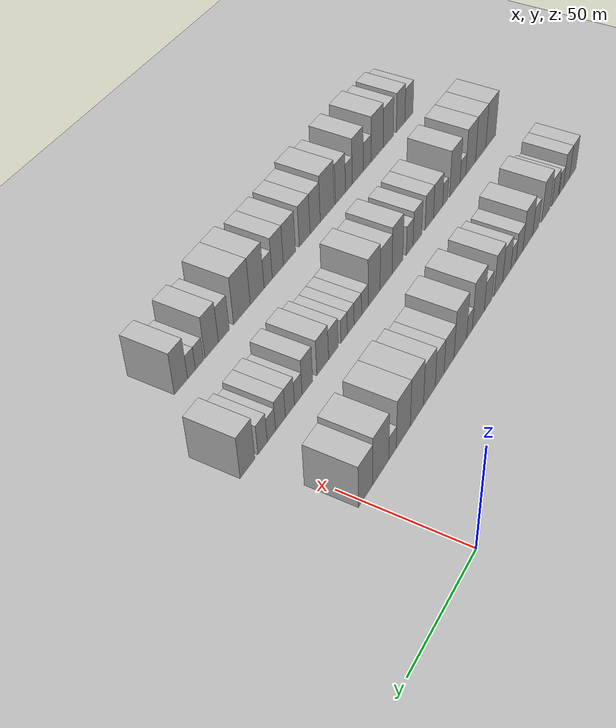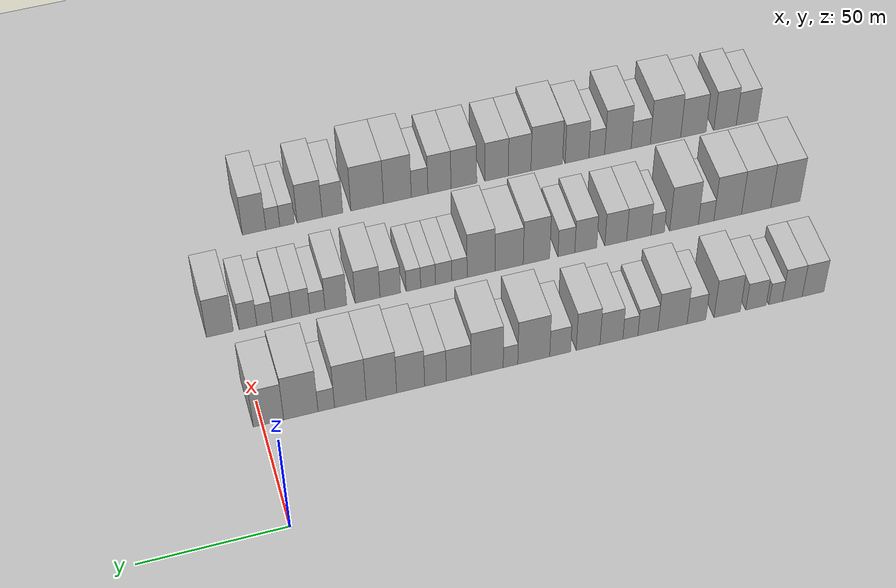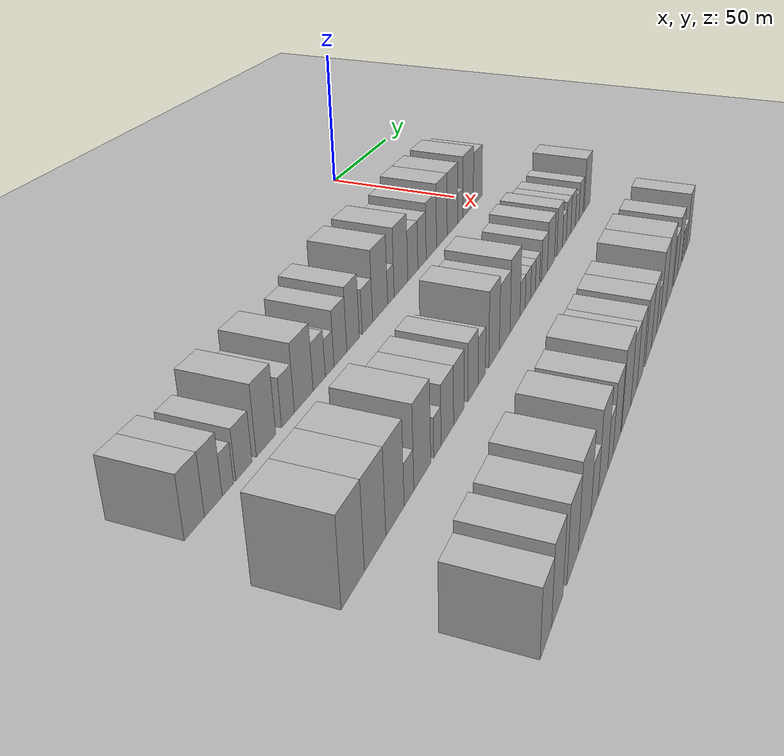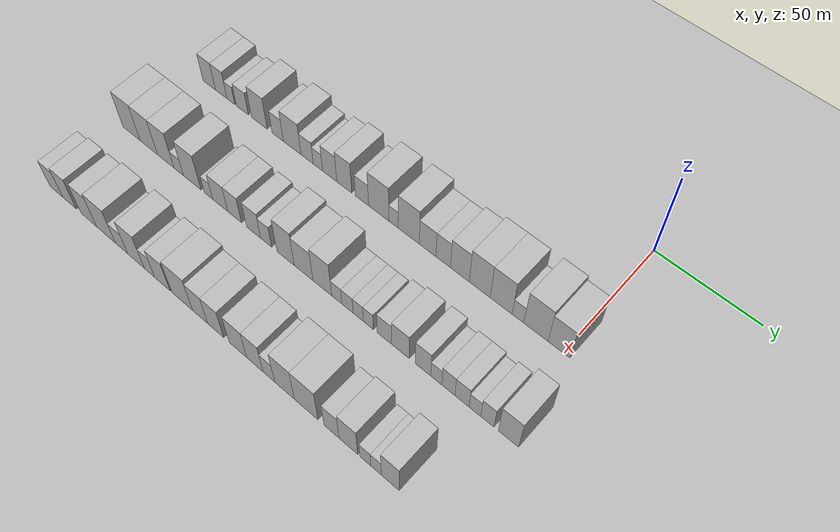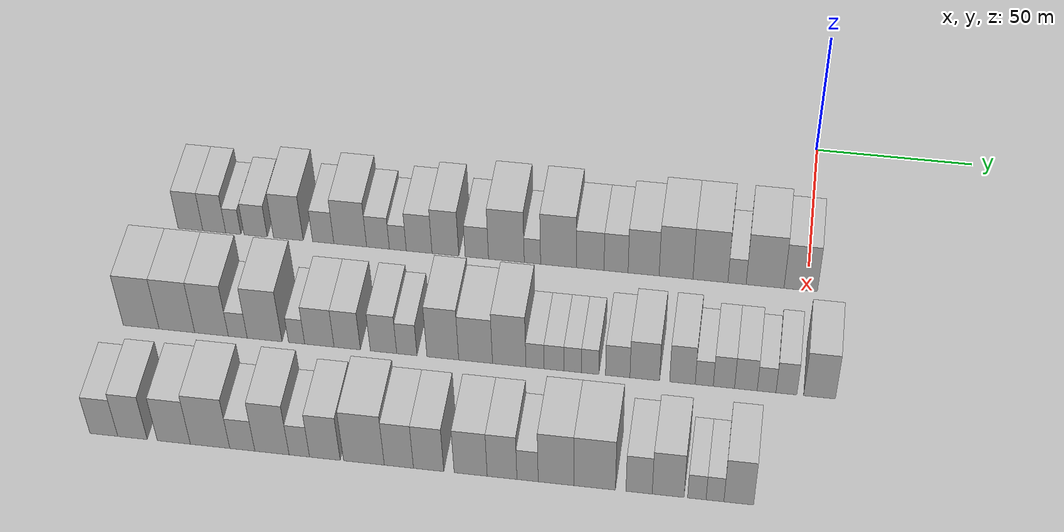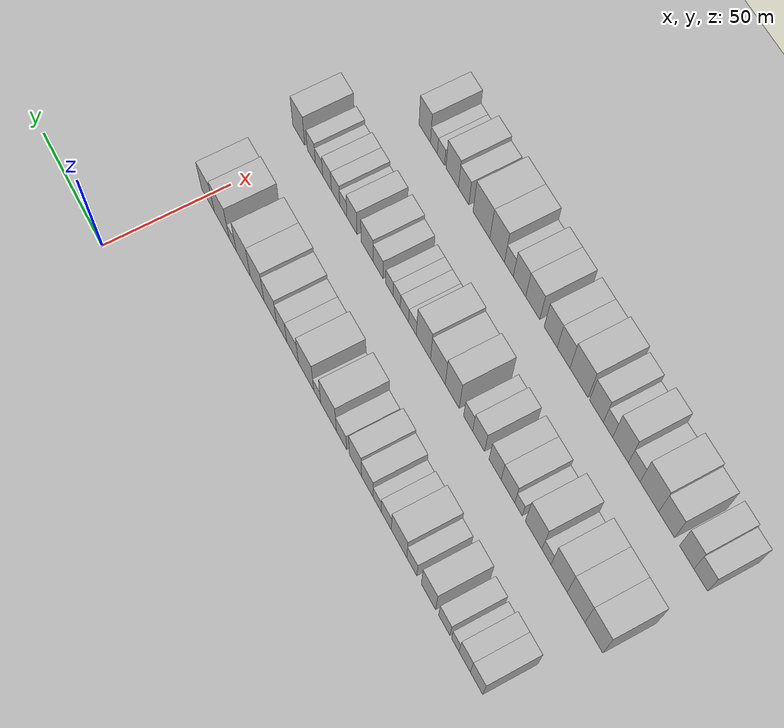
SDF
<sdf version="1.6">
 <world name="default">
  <include><name>ground_plane_1</name><uri>model://HANNAS_ground_plane</uri></include>
  <include>
   <name>ground_plane_2</name>
   <uri>model://HANNAS_ground_plane</uri>
   <pose>100 0 0  0 0 0</pose>
  </include>
  <model name="building_49">
   <static>1</static>
   <pose>50.0000 -193.6138 0 0.000000 0.000000 0.000000</pose>
   <link name="link">
    <pose>0 0 9.00 0 0 0</pose>
    <collision name="collision"><geometry><box><size>20.0000 7.9500 18.0000</size></box></geometry></collision>
    <visual name="visual">
     <cast_shadows>0</cast_shadows>
     <geometry><box><size>20.0000 7.9500 18.0000</size></box></geometry>
     <material>
      <script>
       <uri>model://HANNAS_wall/materials/scripts</uri>
       <uri>model://HANNAS_wall/materials/textures</uri>
       <name>vrc/HANNAS_wall</name>
      </script>
     </material>
    </visual>
   </link>
  </model>
  <model name="building_50">
   <static>1</static>
   <pose>50.0000 -185.9637 0 0.000000 0.000000 0.000000</pose>
   <link name="link">
    <pose>0 0 9.00 0 0 0</pose>
    <collision name="collision"><geometry><box><size>20.0000 7.3501 18.0000</size></box></geometry></collision>
    <visual name="visual">
     <cast_shadows>0</cast_shadows>
     <geometry><box><size>20.0000 7.3501 18.0000</size></box></geometry>
     <material>
      <script>
       <uri>model://HANNAS_wall/materials/scripts</uri>
       <uri>model://HANNAS_wall/materials/textures</uri>
       <name>vrc/HANNAS_wall</name>
      </script>
     </material>
    </visual>
   </link>
  </model>
  <model name="building_51">
   <static>1</static>
   <pose>50.0000 -179.8526 0 0.000000 0.000000 0.000000</pose>
   <link name="link">
    <pose>0 0 6.00 0 0 0</pose>
    <collision name="collision"><geometry><box><size>20.0000 4.8722 12.0000</size></box></geometry></collision>
    <visual name="visual">
     <cast_shadows>0</cast_shadows>
     <geometry><box><size>20.0000 4.8722 12.0000</size></box></geometry>
     <material>
      <script>
       <uri>model://HANNAS_wall/materials/scripts</uri>
       <uri>model://HANNAS_wall/materials/textures</uri>
       <name>vrc/HANNAS_wall</name>
      </script>
     </material>
    </visual>
   </link>
  </model>
  <model name="building_52">
   <static>1</static>
   <pose>50.0000 -172.6999 0 0.000000 0.000000 0.000000</pose>
   <link name="link">
    <pose>0 0 7.50 0 0 0</pose>
    <collision name="collision"><geometry><box><size>20.0000 7.4332 15.0000</size></box></geometry></collision>
    <visual name="visual">
     <cast_shadows>0</cast_shadows>
     <geometry><box><size>20.0000 7.4332 15.0000</size></box></geometry>
     <material>
      <script>
       <uri>model://HANNAS_wall/materials/scripts</uri>
       <uri>model://HANNAS_wall/materials/textures</uri>
       <name>vrc/HANNAS_wall</name>
      </script>
     </material>
    </visual>
   </link>
  </model>
  <model name="building_53">
   <static>1</static>
   <pose>50.0000 -162.2387 0 0.000000 0.000000 0.000000</pose>
   <link name="link">
    <pose>0 0 10.50 0 0 0</pose>
    <collision name="collision"><geometry><box><size>20.0000 9.4893 21.0000</size></box></geometry></collision>
    <visual name="visual">
     <cast_shadows>0</cast_shadows>
     <geometry><box><size>20.0000 9.4893 21.0000</size></box></geometry>
     <material>
      <script>
       <uri>model://HANNAS_wall/materials/scripts</uri>
       <uri>model://HANNAS_wall/materials/textures</uri>
       <name>vrc/HANNAS_wall</name>
      </script>
     </material>
    </visual>
   </link>
  </model>
  <model name="building_54">
   <static>1</static>
   <pose>50.0000 -151.1109 0 0.000000 0.000000 0.000000</pose>
   <link name="link">
    <pose>0 0 7.50 0 0 0</pose>
    <collision name="collision"><geometry><box><size>20.0000 6.7663 15.0000</size></box></geometry></collision>
    <visual name="visual">
     <cast_shadows>0</cast_shadows>
     <geometry><box><size>20.0000 6.7663 15.0000</size></box></geometry>
     <material>
      <script>
       <uri>model://HANNAS_wall/materials/scripts</uri>
       <uri>model://HANNAS_wall/materials/textures</uri>
       <name>vrc/HANNAS_wall</name>
      </script>
     </material>
    </visual>
   </link>
  </model>
  <model name="building_55">
   <static>1</static>
   <pose>50.0000 -142.5127 0 0.000000 0.000000 0.000000</pose>
   <link name="link">
    <pose>0 0 10.50 0 0 0</pose>
    <collision name="collision"><geometry><box><size>20.0000 10.4299 21.0000</size></box></geometry></collision>
    <visual name="visual">
     <cast_shadows>0</cast_shadows>
     <geometry><box><size>20.0000 10.4299 21.0000</size></box></geometry>
     <material>
      <script>
       <uri>model://HANNAS_wall/materials/scripts</uri>
       <uri>model://HANNAS_wall/materials/textures</uri>
       <name>vrc/HANNAS_wall</name>
      </script>
     </material>
    </visual>
   </link>
  </model>
  <model name="building_56">
   <static>1</static>
   <pose>50.0000 -133.7003 0 0.000000 0.000000 0.000000</pose>
   <link name="link">
    <pose>0 0 7.50 0 0 0</pose>
    <collision name="collision"><geometry><box><size>20.0000 7.1949 15.0000</size></box></geometry></collision>
    <visual name="visual">
     <cast_shadows>0</cast_shadows>
     <geometry><box><size>20.0000 7.1949 15.0000</size></box></geometry>
     <material>
      <script>
       <uri>model://HANNAS_wall/materials/scripts</uri>
       <uri>model://HANNAS_wall/materials/textures</uri>
       <name>vrc/HANNAS_wall</name>
      </script>
     </material>
    </visual>
   </link>
  </model>
  <model name="building_57">
   <static>1</static>
   <pose>50.0000 -127.4242 0 0.000000 0.000000 0.000000</pose>
   <link name="link">
    <pose>0 0 6.00 0 0 0</pose>
    <collision name="collision"><geometry><box><size>20.0000 5.3573 12.0000</size></box></geometry></collision>
    <visual name="visual">
     <cast_shadows>0</cast_shadows>
     <geometry><box><size>20.0000 5.3573 12.0000</size></box></geometry>
     <material>
      <script>
       <uri>model://HANNAS_wall/materials/scripts</uri>
       <uri>model://HANNAS_wall/materials/textures</uri>
       <name>vrc/HANNAS_wall</name>
      </script>
     </material>
    </visual>
   </link>
  </model>
  <model name="building_58">
   <static>1</static>
   <pose>50.0000 -120.6747 0 0.000000 0.000000 0.000000</pose>
   <link name="link">
    <pose>0 0 9.00 0 0 0</pose>
    <collision name="collision"><geometry><box><size>20.0000 8.1415 18.0000</size></box></geometry></collision>
    <visual name="visual">
     <cast_shadows>0</cast_shadows>
     <geometry><box><size>20.0000 8.1415 18.0000</size></box></geometry>
     <material>
      <script>
       <uri>model://HANNAS_wall/materials/scripts</uri>
       <uri>model://HANNAS_wall/materials/textures</uri>
       <name>vrc/HANNAS_wall</name>
      </script>
     </material>
    </visual>
   </link>
  </model>
  <model name="building_59">
   <static>1</static>
   <pose>50.0000 -112.3836 0 0.000000 0.000000 0.000000</pose>
   <link name="link">
    <pose>0 0 10.50 0 0 0</pose>
    <collision name="collision"><geometry><box><size>20.0000 8.4407 21.0000</size></box></geometry></collision>
    <visual name="visual">
     <cast_shadows>0</cast_shadows>
     <geometry><box><size>20.0000 8.4407 21.0000</size></box></geometry>
     <material>
      <script>
       <uri>model://HANNAS_wall/materials/scripts</uri>
       <uri>model://HANNAS_wall/materials/textures</uri>
       <name>vrc/HANNAS_wall</name>
      </script>
     </material>
    </visual>
   </link>
  </model>
  <model name="building_60">
   <static>1</static>
   <pose>50.0000 -102.4915 0 0.000000 0.000000 0.000000</pose>
   <link name="link">
    <pose>0 0 7.50 0 0 0</pose>
    <collision name="collision"><geometry><box><size>20.0000 7.3436 15.0000</size></box></geometry></collision>
    <visual name="visual">
     <cast_shadows>0</cast_shadows>
     <geometry><box><size>20.0000 7.3436 15.0000</size></box></geometry>
     <material>
      <script>
       <uri>model://HANNAS_wall/materials/scripts</uri>
       <uri>model://HANNAS_wall/materials/textures</uri>
       <name>vrc/HANNAS_wall</name>
      </script>
     </material>
    </visual>
   </link>
  </model>
  <model name="building_61">
   <static>1</static>
   <pose>50.0000 -93.2110 0 0.000000 0.000000 0.000000</pose>
   <link name="link">
    <pose>0 0 12.00 0 0 0</pose>
    <collision name="collision"><geometry><box><size>20.0000 11.2173 24.0000</size></box></geometry></collision>
    <visual name="visual">
     <cast_shadows>0</cast_shadows>
     <geometry><box><size>20.0000 11.2173 24.0000</size></box></geometry>
     <material>
      <script>
       <uri>model://HANNAS_wall/materials/scripts</uri>
       <uri>model://HANNAS_wall/materials/textures</uri>
       <name>vrc/HANNAS_wall</name>
      </script>
     </material>
    </visual>
   </link>
  </model>
  <model name="building_62">
   <static>1</static>
   <pose>50.0000 -85.0519 0 0.000000 0.000000 0.000000</pose>
   <link name="link">
    <pose>0 0 6.00 0 0 0</pose>
    <collision name="collision"><geometry><box><size>20.0000 5.1009 12.0000</size></box></geometry></collision>
    <visual name="visual">
     <cast_shadows>0</cast_shadows>
     <geometry><box><size>20.0000 5.1009 12.0000</size></box></geometry>
     <material>
      <script>
       <uri>model://HANNAS_wall/materials/scripts</uri>
       <uri>model://HANNAS_wall/materials/textures</uri>
       <name>vrc/HANNAS_wall</name>
      </script>
     </material>
    </visual>
   </link>
  </model>
  <model name="building_63">
   <static>1</static>
   <pose>50.0000 -76.9320 0 0.000000 0.000000 0.000000</pose>
   <link name="link">
    <pose>0 0 12.00 0 0 0</pose>
    <collision name="collision"><geometry><box><size>20.0000 11.1389 24.0000</size></box></geometry></collision>
    <visual name="visual">
     <cast_shadows>0</cast_shadows>
     <geometry><box><size>20.0000 11.1389 24.0000</size></box></geometry>
     <material>
      <script>
       <uri>model://HANNAS_wall/materials/scripts</uri>
       <uri>model://HANNAS_wall/materials/textures</uri>
       <name>vrc/HANNAS_wall</name>
      </script>
     </material>
    </visual>
   </link>
  </model>
  <model name="building_64">
   <static>1</static>
   <pose>50.0000 -67.0298 0 0.000000 0.000000 0.000000</pose>
   <link name="link">
    <pose>0 0 9.00 0 0 0</pose>
    <collision name="collision"><geometry><box><size>20.0000 8.6655 18.0000</size></box></geometry></collision>
    <visual name="visual">
     <cast_shadows>0</cast_shadows>
     <geometry><box><size>20.0000 8.6655 18.0000</size></box></geometry>
     <material>
      <script>
       <uri>model://HANNAS_wall/materials/scripts</uri>
       <uri>model://HANNAS_wall/materials/textures</uri>
       <name>vrc/HANNAS_wall</name>
      </script>
     </material>
    </visual>
   </link>
  </model>
  <model name="building_65">
   <static>1</static>
   <pose>50.0000 -58.9646 0 0.000000 0.000000 0.000000</pose>
   <link name="link">
    <pose>0 0 9.00 0 0 0</pose>
    <collision name="collision"><geometry><box><size>20.0000 7.4649 18.0000</size></box></geometry></collision>
    <visual name="visual">
     <cast_shadows>0</cast_shadows>
     <geometry><box><size>20.0000 7.4649 18.0000</size></box></geometry>
     <material>
      <script>
       <uri>model://HANNAS_wall/materials/scripts</uri>
       <uri>model://HANNAS_wall/materials/textures</uri>
       <name>vrc/HANNAS_wall</name>
      </script>
     </material>
    </visual>
   </link>
  </model>
  <model name="building_66">
   <static>1</static>
   <pose>50.0000 -50.4153 0 0.000000 0.000000 0.000000</pose>
   <link name="link">
    <pose>0 0 10.50 0 0 0</pose>
    <collision name="collision"><geometry><box><size>20.0000 9.6337 21.0000</size></box></geometry></collision>
    <visual name="visual">
     <cast_shadows>0</cast_shadows>
     <geometry><box><size>20.0000 9.6337 21.0000</size></box></geometry>
     <material>
      <script>
       <uri>model://HANNAS_wall/materials/scripts</uri>
       <uri>model://HANNAS_wall/materials/textures</uri>
       <name>vrc/HANNAS_wall</name>
      </script>
     </material>
    </visual>
   </link>
  </model>
  <model name="building_67">
   <static>1</static>
   <pose>50.0000 -40.3622 0 0.000000 0.000000 0.000000</pose>
   <link name="link">
    <pose>0 0 12.00 0 0 0</pose>
    <collision name="collision"><geometry><box><size>20.0000 10.4725 24.0000</size></box></geometry></collision>
    <visual name="visual">
     <cast_shadows>0</cast_shadows>
     <geometry><box><size>20.0000 10.4725 24.0000</size></box></geometry>
     <material>
      <script>
       <uri>model://HANNAS_wall/materials/scripts</uri>
       <uri>model://HANNAS_wall/materials/textures</uri>
       <name>vrc/HANNAS_wall</name>
      </script>
     </material>
    </visual>
   </link>
  </model>
  <model name="building_68">
   <static>1</static>
   <pose>50.0000 -29.7375 0 0.000000 0.000000 0.000000</pose>
   <link name="link">
    <pose>0 0 12.00 0 0 0</pose>
    <collision name="collision"><geometry><box><size>20.0000 10.7768 24.0000</size></box></geometry></collision>
    <visual name="visual">
     <cast_shadows>0</cast_shadows>
     <geometry><box><size>20.0000 10.7768 24.0000</size></box></geometry>
     <material>
      <script>
       <uri>model://HANNAS_wall/materials/scripts</uri>
       <uri>model://HANNAS_wall/materials/textures</uri>
       <name>vrc/HANNAS_wall</name>
      </script>
     </material>
    </visual>
   </link>
  </model>
  <model name="building_69">
   <static>1</static>
   <pose>50.0000 -21.5376 0 0.000000 0.000000 0.000000</pose>
   <link name="link">
    <pose>0 0 6.00 0 0 0</pose>
    <collision name="collision"><geometry><box><size>20.0000 5.6230 12.0000</size></box></geometry></collision>
    <visual name="visual">
     <cast_shadows>0</cast_shadows>
     <geometry><box><size>20.0000 5.6230 12.0000</size></box></geometry>
     <material>
      <script>
       <uri>model://HANNAS_wall/materials/scripts</uri>
       <uri>model://HANNAS_wall/materials/textures</uri>
       <name>vrc/HANNAS_wall</name>
      </script>
     </material>
    </visual>
   </link>
  </model>
  <model name="building_70">
   <static>1</static>
   <pose>50.0000 -12.9066 0 0.000000 0.000000 0.000000</pose>
   <link name="link">
    <pose>0 0 12.00 0 0 0</pose>
    <collision name="collision"><geometry><box><size>20.0000 11.6391 24.0000</size></box></geometry></collision>
    <visual name="visual">
     <cast_shadows>0</cast_shadows>
     <geometry><box><size>20.0000 11.6391 24.0000</size></box></geometry>
     <material>
      <script>
       <uri>model://HANNAS_wall/materials/scripts</uri>
       <uri>model://HANNAS_wall/materials/textures</uri>
       <name>vrc/HANNAS_wall</name>
      </script>
     </material>
    </visual>
   </link>
  </model>
  <model name="building_71">
   <static>1</static>
   <pose>50.0000 -1.9592 0 0.000000 0.000000 0.000000</pose>
   <link name="link">
    <pose>0 0 10.50 0 0 0</pose>
    <collision name="collision"><geometry><box><size>20.0000 10.2557 21.0000</size></box></geometry></collision>
    <visual name="visual">
     <cast_shadows>0</cast_shadows>
     <geometry><box><size>20.0000 10.2557 21.0000</size></box></geometry>
     <material>
      <script>
       <uri>model://HANNAS_wall/materials/scripts</uri>
       <uri>model://HANNAS_wall/materials/textures</uri>
       <name>vrc/HANNAS_wall</name>
      </script>
     </material>
    </visual>
   </link>
  </model>
  <model name="building_183">
   <static>1</static>
   <pose>90.0000 -198.7965 0 0.000000 0.000000 0.000000</pose>
   <link name="link">
    <pose>0 0 12.00 0 0 0</pose>
    <collision name="collision"><geometry><box><size>20.0000 11.0806 24.0000</size></box></geometry></collision>
    <visual name="visual">
     <cast_shadows>0</cast_shadows>
     <geometry><box><size>20.0000 11.0806 24.0000</size></box></geometry>
     <material>
      <script>
       <uri>model://HANNAS_wall/materials/scripts</uri>
       <uri>model://HANNAS_wall/materials/textures</uri>
       <name>vrc/HANNAS_wall</name>
      </script>
     </material>
    </visual>
   </link>
  </model>
  <model name="building_184">
   <static>1</static>
   <pose>90.0000 -187.7312 0 0.000000 0.000000 0.000000</pose>
   <link name="link">
    <pose>0 0 12.00 0 0 0</pose>
    <collision name="collision"><geometry><box><size>20.0000 11.0500 24.0000</size></box></geometry></collision>
    <visual name="visual">
     <cast_shadows>0</cast_shadows>
     <geometry><box><size>20.0000 11.0500 24.0000</size></box></geometry>
     <material>
      <script>
       <uri>model://HANNAS_wall/materials/scripts</uri>
       <uri>model://HANNAS_wall/materials/textures</uri>
       <name>vrc/HANNAS_wall</name>
      </script>
     </material>
    </visual>
   </link>
  </model>
  <model name="building_185">
   <static>1</static>
   <pose>90.0000 -177.0388 0 0.000000 0.000000 0.000000</pose>
   <link name="link">
    <pose>0 0 12.00 0 0 0</pose>
    <collision name="collision"><geometry><box><size>20.0000 10.3347 24.0000</size></box></geometry></collision>
    <visual name="visual">
     <cast_shadows>0</cast_shadows>
     <geometry><box><size>20.0000 10.3347 24.0000</size></box></geometry>
     <material>
      <script>
       <uri>model://HANNAS_wall/materials/scripts</uri>
       <uri>model://HANNAS_wall/materials/textures</uri>
       <name>vrc/HANNAS_wall</name>
      </script>
     </material>
    </visual>
   </link>
  </model>
  <model name="building_186">
   <static>1</static>
   <pose>90.0000 -168.9630 0 0.000000 0.000000 0.000000</pose>
   <link name="link">
    <pose>0 0 6.00 0 0 0</pose>
    <collision name="collision"><geometry><box><size>20.0000 5.8170 12.0000</size></box></geometry></collision>
    <visual name="visual">
     <cast_shadows>0</cast_shadows>
     <geometry><box><size>20.0000 5.8170 12.0000</size></box></geometry>
     <material>
      <script>
       <uri>model://HANNAS_wall/materials/scripts</uri>
       <uri>model://HANNAS_wall/materials/textures</uri>
       <name>vrc/HANNAS_wall</name>
      </script>
     </material>
    </visual>
   </link>
  </model>
  <model name="building_187">
   <static>1</static>
   <pose>90.0000 -160.7161 0 0.000000 0.000000 0.000000</pose>
   <link name="link">
    <pose>0 0 12.00 0 0 0</pose>
    <collision name="collision"><geometry><box><size>20.0000 10.6766 24.0000</size></box></geometry></collision>
    <visual name="visual">
     <cast_shadows>0</cast_shadows>
     <geometry><box><size>20.0000 10.6766 24.0000</size></box></geometry>
     <material>
      <script>
       <uri>model://HANNAS_wall/materials/scripts</uri>
       <uri>model://HANNAS_wall/materials/textures</uri>
       <name>vrc/HANNAS_wall</name>
      </script>
     </material>
    </visual>
   </link>
  </model>
  <model name="building_188">
   <static>1</static>
   <pose>90.0000 -150.8990 0 0.000000 0.000000 0.000000</pose>
   <link name="link">
    <pose>0 0 6.00 0 0 0</pose>
    <collision name="collision"><geometry><box><size>20.0000 4.9576 12.0000</size></box></geometry></collision>
    <visual name="visual">
     <cast_shadows>0</cast_shadows>
     <geometry><box><size>20.0000 4.9576 12.0000</size></box></geometry>
     <material>
      <script>
       <uri>model://HANNAS_wall/materials/scripts</uri>
       <uri>model://HANNAS_wall/materials/textures</uri>
       <name>vrc/HANNAS_wall</name>
      </script>
     </material>
    </visual>
   </link>
  </model>
  <model name="building_189">
   <static>1</static>
   <pose>90.0000 -143.9387 0 0.000000 0.000000 0.000000</pose>
   <link name="link">
    <pose>0 0 9.00 0 0 0</pose>
    <collision name="collision"><geometry><box><size>20.0000 8.9630 18.0000</size></box></geometry></collision>
    <visual name="visual">
     <cast_shadows>0</cast_shadows>
     <geometry><box><size>20.0000 8.9630 18.0000</size></box></geometry>
     <material>
      <script>
       <uri>model://HANNAS_wall/materials/scripts</uri>
       <uri>model://HANNAS_wall/materials/textures</uri>
       <name>vrc/HANNAS_wall</name>
      </script>
     </material>
    </visual>
   </link>
  </model>
  <model name="building_190">
   <static>1</static>
   <pose>90.0000 -135.4319 0 0.000000 0.000000 0.000000</pose>
   <link name="link">
    <pose>0 0 9.00 0 0 0</pose>
    <collision name="collision"><geometry><box><size>20.0000 8.0506 18.0000</size></box></geometry></collision>
    <visual name="visual">
     <cast_shadows>0</cast_shadows>
     <geometry><box><size>20.0000 8.0506 18.0000</size></box></geometry>
     <material>
      <script>
       <uri>model://HANNAS_wall/materials/scripts</uri>
       <uri>model://HANNAS_wall/materials/textures</uri>
       <name>vrc/HANNAS_wall</name>
      </script>
     </material>
    </visual>
   </link>
  </model>
  <model name="building_191">
   <static>1</static>
   <pose>90.0000 -124.3898 0 0.000000 0.000000 0.000000</pose>
   <link name="link">
    <pose>0 0 9.00 0 0 0</pose>
    <collision name="collision"><geometry><box><size>20.0000 8.0337 18.0000</size></box></geometry></collision>
    <visual name="visual">
     <cast_shadows>0</cast_shadows>
     <geometry><box><size>20.0000 8.0337 18.0000</size></box></geometry>
     <material>
      <script>
       <uri>model://HANNAS_wall/materials/scripts</uri>
       <uri>model://HANNAS_wall/materials/textures</uri>
       <name>vrc/HANNAS_wall</name>
      </script>
     </material>
    </visual>
   </link>
  </model>
  <model name="building_192">
   <static>1</static>
   <pose>90.0000 -117.2927 0 0.000000 0.000000 0.000000</pose>
   <link name="link">
    <pose>0 0 7.50 0 0 0</pose>
    <collision name="collision"><geometry><box><size>20.0000 6.1603 15.0000</size></box></geometry></collision>
    <visual name="visual">
     <cast_shadows>0</cast_shadows>
     <geometry><box><size>20.0000 6.1603 15.0000</size></box></geometry>
     <material>
      <script>
       <uri>model://HANNAS_wall/materials/scripts</uri>
       <uri>model://HANNAS_wall/materials/textures</uri>
       <name>vrc/HANNAS_wall</name>
      </script>
     </material>
    </visual>
   </link>
  </model>
  <model name="building_193">
   <static>1</static>
   <pose>90.0000 -106.4087 0 0.000000 0.000000 0.000000</pose>
   <link name="link">
    <pose>0 0 12.00 0 0 0</pose>
    <collision name="collision"><geometry><box><size>20.0000 9.6076 24.0000</size></box></geometry></collision>
    <visual name="visual">
     <cast_shadows>0</cast_shadows>
     <geometry><box><size>20.0000 9.6076 24.0000</size></box></geometry>
     <material>
      <script>
       <uri>model://HANNAS_wall/materials/scripts</uri>
       <uri>model://HANNAS_wall/materials/textures</uri>
       <name>vrc/HANNAS_wall</name>
      </script>
     </material>
    </visual>
   </link>
  </model>
  <model name="building_194">
   <static>1</static>
   <pose>90.0000 -96.5031 0 0.000000 0.000000 0.000000</pose>
   <link name="link">
    <pose>0 0 10.50 0 0 0</pose>
    <collision name="collision"><geometry><box><size>20.0000 10.2036 21.0000</size></box></geometry></collision>
    <visual name="visual">
     <cast_shadows>0</cast_shadows>
     <geometry><box><size>20.0000 10.2036 21.0000</size></box></geometry>
     <material>
      <script>
       <uri>model://HANNAS_wall/materials/scripts</uri>
       <uri>model://HANNAS_wall/materials/textures</uri>
       <name>vrc/HANNAS_wall</name>
      </script>
     </material>
    </visual>
   </link>
  </model>
  <model name="building_195">
   <static>1</static>
   <pose>90.0000 -86.3754 0 0.000000 0.000000 0.000000</pose>
   <link name="link">
    <pose>0 0 12.00 0 0 0</pose>
    <collision name="collision"><geometry><box><size>20.0000 10.0518 24.0000</size></box></geometry></collision>
    <visual name="visual">
     <cast_shadows>0</cast_shadows>
     <geometry><box><size>20.0000 10.0518 24.0000</size></box></geometry>
     <material>
      <script>
       <uri>model://HANNAS_wall/materials/scripts</uri>
       <uri>model://HANNAS_wall/materials/textures</uri>
       <name>vrc/HANNAS_wall</name>
      </script>
     </material>
    </visual>
   </link>
  </model>
  <model name="building_196">
   <static>1</static>
   <pose>90.0000 -78.6132 0 0.000000 0.000000 0.000000</pose>
   <link name="link">
    <pose>0 0 6.00 0 0 0</pose>
    <collision name="collision"><geometry><box><size>20.0000 5.4726 12.0000</size></box></geometry></collision>
    <visual name="visual">
     <cast_shadows>0</cast_shadows>
     <geometry><box><size>20.0000 5.4726 12.0000</size></box></geometry>
     <material>
      <script>
       <uri>model://HANNAS_wall/materials/scripts</uri>
       <uri>model://HANNAS_wall/materials/textures</uri>
       <name>vrc/HANNAS_wall</name>
      </script>
     </material>
    </visual>
   </link>
  </model>
  <model name="building_197">
   <static>1</static>
   <pose>90.0000 -72.9280 0 0.000000 0.000000 0.000000</pose>
   <link name="link">
    <pose>0 0 6.00 0 0 0</pose>
    <collision name="collision"><geometry><box><size>20.0000 5.8979 12.0000</size></box></geometry></collision>
    <visual name="visual">
     <cast_shadows>0</cast_shadows>
     <geometry><box><size>20.0000 5.8979 12.0000</size></box></geometry>
     <material>
      <script>
       <uri>model://HANNAS_wall/materials/scripts</uri>
       <uri>model://HANNAS_wall/materials/textures</uri>
       <name>vrc/HANNAS_wall</name>
      </script>
     </material>
    </visual>
   </link>
  </model>
  <model name="building_198">
   <static>1</static>
   <pose>90.0000 -67.3420 0 0.000000 0.000000 0.000000</pose>
   <link name="link">
    <pose>0 0 6.00 0 0 0</pose>
    <collision name="collision"><geometry><box><size>20.0000 5.2740 12.0000</size></box></geometry></collision>
    <visual name="visual">
     <cast_shadows>0</cast_shadows>
     <geometry><box><size>20.0000 5.2740 12.0000</size></box></geometry>
     <material>
      <script>
       <uri>model://HANNAS_wall/materials/scripts</uri>
       <uri>model://HANNAS_wall/materials/textures</uri>
       <name>vrc/HANNAS_wall</name>
      </script>
     </material>
    </visual>
   </link>
  </model>
  <model name="building_199">
   <static>1</static>
   <pose>90.0000 -62.1107 0 0.000000 0.000000 0.000000</pose>
   <link name="link">
    <pose>0 0 6.00 0 0 0</pose>
    <collision name="collision"><geometry><box><size>20.0000 5.1886 12.0000</size></box></geometry></collision>
    <visual name="visual">
     <cast_shadows>0</cast_shadows>
     <geometry><box><size>20.0000 5.1886 12.0000</size></box></geometry>
     <material>
      <script>
       <uri>model://HANNAS_wall/materials/scripts</uri>
       <uri>model://HANNAS_wall/materials/textures</uri>
       <name>vrc/HANNAS_wall</name>
      </script>
     </material>
    </visual>
   </link>
  </model>
  <model name="building_200">
   <static>1</static>
   <pose>90.0000 -53.8753 0 0.000000 0.000000 0.000000</pose>
   <link name="link">
    <pose>0 0 7.50 0 0 0</pose>
    <collision name="collision"><geometry><box><size>20.0000 7.2821 15.0000</size></box></geometry></collision>
    <visual name="visual">
     <cast_shadows>0</cast_shadows>
     <geometry><box><size>20.0000 7.2821 15.0000</size></box></geometry>
     <material>
      <script>
       <uri>model://HANNAS_wall/materials/scripts</uri>
       <uri>model://HANNAS_wall/materials/textures</uri>
       <name>vrc/HANNAS_wall</name>
      </script>
     </material>
    </visual>
   </link>
  </model>
  <model name="building_201">
   <static>1</static>
   <pose>90.0000 -45.8330 0 0.000000 0.000000 0.000000</pose>
   <link name="link">
    <pose>0 0 9.00 0 0 0</pose>
    <collision name="collision"><geometry><box><size>20.0000 8.8026 18.0000</size></box></geometry></collision>
    <visual name="visual">
     <cast_shadows>0</cast_shadows>
     <geometry><box><size>20.0000 8.8026 18.0000</size></box></geometry>
     <material>
      <script>
       <uri>model://HANNAS_wall/materials/scripts</uri>
       <uri>model://HANNAS_wall/materials/textures</uri>
       <name>vrc/HANNAS_wall</name>
      </script>
     </material>
    </visual>
   </link>
  </model>
  <model name="building_202">
   <static>1</static>
   <pose>90.0000 -34.6367 0 0.000000 0.000000 0.000000</pose>
   <link name="link">
    <pose>0 0 9.00 0 0 0</pose>
    <collision name="collision"><geometry><box><size>20.0000 7.5900 18.0000</size></box></geometry></collision>
    <visual name="visual">
     <cast_shadows>0</cast_shadows>
     <geometry><box><size>20.0000 7.5900 18.0000</size></box></geometry>
     <material>
      <script>
       <uri>model://HANNAS_wall/materials/scripts</uri>
       <uri>model://HANNAS_wall/materials/textures</uri>
       <name>vrc/HANNAS_wall</name>
      </script>
     </material>
    </visual>
   </link>
  </model>
  <model name="building_203">
   <static>1</static>
   <pose>90.0000 -28.1659 0 0.000000 0.000000 0.000000</pose>
   <link name="link">
    <pose>0 0 6.00 0 0 0</pose>
    <collision name="collision"><geometry><box><size>20.0000 5.3516 12.0000</size></box></geometry></collision>
    <visual name="visual">
     <cast_shadows>0</cast_shadows>
     <geometry><box><size>20.0000 5.3516 12.0000</size></box></geometry>
     <material>
      <script>
       <uri>model://HANNAS_wall/materials/scripts</uri>
       <uri>model://HANNAS_wall/materials/textures</uri>
       <name>vrc/HANNAS_wall</name>
      </script>
     </material>
    </visual>
   </link>
  </model>
  <model name="building_204">
   <static>1</static>
   <pose>90.0000 -22.3485 0 0.000000 0.000000 0.000000</pose>
   <link name="link">
    <pose>0 0 7.50 0 0 0</pose>
    <collision name="collision"><geometry><box><size>20.0000 6.2832 15.0000</size></box></geometry></collision>
    <visual name="visual">
     <cast_shadows>0</cast_shadows>
     <geometry><box><size>20.0000 6.2832 15.0000</size></box></geometry>
     <material>
      <script>
       <uri>model://HANNAS_wall/materials/scripts</uri>
       <uri>model://HANNAS_wall/materials/textures</uri>
       <name>vrc/HANNAS_wall</name>
      </script>
     </material>
    </visual>
   </link>
  </model>
  <model name="building_205">
   <static>1</static>
   <pose>90.0000 -15.8681 0 0.000000 0.000000 0.000000</pose>
   <link name="link">
    <pose>0 0 7.50 0 0 0</pose>
    <collision name="collision"><geometry><box><size>20.0000 6.6775 15.0000</size></box></geometry></collision>
    <visual name="visual">
     <cast_shadows>0</cast_shadows>
     <geometry><box><size>20.0000 6.6775 15.0000</size></box></geometry>
     <material>
      <script>
       <uri>model://HANNAS_wall/materials/scripts</uri>
       <uri>model://HANNAS_wall/materials/textures</uri>
       <name>vrc/HANNAS_wall</name>
      </script>
     </material>
    </visual>
   </link>
  </model>
  <model name="building_206">
   <static>1</static>
   <pose>90.0000 -9.7607 0 0.000000 0.000000 0.000000</pose>
   <link name="link">
    <pose>0 0 6.00 0 0 0</pose>
    <collision name="collision"><geometry><box><size>20.0000 5.5373 12.0000</size></box></geometry></collision>
    <visual name="visual">
     <cast_shadows>0</cast_shadows>
     <geometry><box><size>20.0000 5.5373 12.0000</size></box></geometry>
     <material>
      <script>
       <uri>model://HANNAS_wall/materials/scripts</uri>
       <uri>model://HANNAS_wall/materials/textures</uri>
       <name>vrc/HANNAS_wall</name>
      </script>
     </material>
    </visual>
   </link>
  </model>
  <model name="building_207">
   <static>1</static>
   <pose>90.0000 -3.9104 0 0.000000 0.000000 0.000000</pose>
   <link name="link">
    <pose>0 0 7.50 0 0 0</pose>
    <collision name="collision"><geometry><box><size>20.0000 6.1633 15.0000</size></box></geometry></collision>
    <visual name="visual">
     <cast_shadows>0</cast_shadows>
     <geometry><box><size>20.0000 6.1633 15.0000</size></box></geometry>
     <material>
      <script>
       <uri>model://HANNAS_wall/materials/scripts</uri>
       <uri>model://HANNAS_wall/materials/textures</uri>
       <name>vrc/HANNAS_wall</name>
      </script>
     </material>
    </visual>
   </link>
  </model>
  <model name="building_208">
   <static>1</static>
   <pose>90.0000 5.8386 0 0.000000 0.000000 0.000000</pose>
   <link name="link">
    <pose>0 0 10.50 0 0 0</pose>
    <collision name="collision"><geometry><box><size>20.0000 9.3346 21.0000</size></box></geometry></collision>
    <visual name="visual">
     <cast_shadows>0</cast_shadows>
     <geometry><box><size>20.0000 9.3346 21.0000</size></box></geometry>
     <material>
      <script>
       <uri>model://HANNAS_wall/materials/scripts</uri>
       <uri>model://HANNAS_wall/materials/textures</uri>
       <name>vrc/HANNAS_wall</name>
      </script>
     </material>
    </visual>
   </link>
  </model>
  <model name="building_321">
   <static>1</static>
   <pose>130.0000 -199.1531 0 0.000000 0.000000 0.000000</pose>
   <link name="link">
    <pose>0 0 9.00 0 0 0</pose>
    <collision name="collision"><geometry><box><size>20.0000 8.2815 18.0000</size></box></geometry></collision>
    <visual name="visual">
     <cast_shadows>0</cast_shadows>
     <geometry><box><size>20.0000 8.2815 18.0000</size></box></geometry>
     <material>
      <script>
       <uri>model://HANNAS_wall/materials/scripts</uri>
       <uri>model://HANNAS_wall/materials/textures</uri>
       <name>vrc/HANNAS_wall</name>
      </script>
     </material>
    </visual>
   </link>
  </model>
  <model name="building_322">
   <static>1</static>
   <pose>130.0000 -190.6394 0 0.000000 0.000000 0.000000</pose>
   <link name="link">
    <pose>0 0 10.50 0 0 0</pose>
    <collision name="collision"><geometry><box><size>20.0000 8.7459 21.0000</size></box></geometry></collision>
    <visual name="visual">
     <cast_shadows>0</cast_shadows>
     <geometry><box><size>20.0000 8.7459 21.0000</size></box></geometry>
     <material>
      <script>
       <uri>model://HANNAS_wall/materials/scripts</uri>
       <uri>model://HANNAS_wall/materials/textures</uri>
       <name>vrc/HANNAS_wall</name>
      </script>
     </material>
    </visual>
   </link>
  </model>
  <model name="building_323">
   <static>1</static>
   <pose>130.0000 -178.3749 0 0.000000 0.000000 0.000000</pose>
   <link name="link">
    <pose>0 0 10.50 0 0 0</pose>
    <collision name="collision"><geometry><box><size>20.0000 9.7831 21.0000</size></box></geometry></collision>
    <visual name="visual">
     <cast_shadows>0</cast_shadows>
     <geometry><box><size>20.0000 9.7831 21.0000</size></box></geometry>
     <material>
      <script>
       <uri>model://HANNAS_wall/materials/scripts</uri>
       <uri>model://HANNAS_wall/materials/textures</uri>
       <name>vrc/HANNAS_wall</name>
      </script>
     </material>
    </visual>
   </link>
  </model>
  <model name="building_324">
   <static>1</static>
   <pose>130.0000 -167.6653 0 0.000000 0.000000 0.000000</pose>
   <link name="link">
    <pose>0 0 12.00 0 0 0</pose>
    <collision name="collision"><geometry><box><size>20.0000 11.6360 24.0000</size></box></geometry></collision>
    <visual name="visual">
     <cast_shadows>0</cast_shadows>
     <geometry><box><size>20.0000 11.6360 24.0000</size></box></geometry>
     <material>
      <script>
       <uri>model://HANNAS_wall/materials/scripts</uri>
       <uri>model://HANNAS_wall/materials/textures</uri>
       <name>vrc/HANNAS_wall</name>
      </script>
     </material>
    </visual>
   </link>
  </model>
  <model name="building_325">
   <static>1</static>
   <pose>130.0000 -158.1570 0 0.000000 0.000000 0.000000</pose>
   <link name="link">
    <pose>0 0 7.50 0 0 0</pose>
    <collision name="collision"><geometry><box><size>20.0000 7.3804 15.0000</size></box></geometry></collision>
    <visual name="visual">
     <cast_shadows>0</cast_shadows>
     <geometry><box><size>20.0000 7.3804 15.0000</size></box></geometry>
     <material>
      <script>
       <uri>model://HANNAS_wall/materials/scripts</uri>
       <uri>model://HANNAS_wall/materials/textures</uri>
       <name>vrc/HANNAS_wall</name>
      </script>
     </material>
    </visual>
   </link>
  </model>
  <model name="building_326">
   <static>1</static>
   <pose>130.0000 -149.4421 0 0.000000 0.000000 0.000000</pose>
   <link name="link">
    <pose>0 0 12.00 0 0 0</pose>
    <collision name="collision"><geometry><box><size>20.0000 10.0494 24.0000</size></box></geometry></collision>
    <visual name="visual">
     <cast_shadows>0</cast_shadows>
     <geometry><box><size>20.0000 10.0494 24.0000</size></box></geometry>
     <material>
      <script>
       <uri>model://HANNAS_wall/materials/scripts</uri>
       <uri>model://HANNAS_wall/materials/textures</uri>
       <name>vrc/HANNAS_wall</name>
      </script>
     </material>
    </visual>
   </link>
  </model>
  <model name="building_327">
   <static>1</static>
   <pose>130.0000 -141.4119 0 0.000000 0.000000 0.000000</pose>
   <link name="link">
    <pose>0 0 7.50 0 0 0</pose>
    <collision name="collision"><geometry><box><size>20.0000 6.0112 15.0000</size></box></geometry></collision>
    <visual name="visual">
     <cast_shadows>0</cast_shadows>
     <geometry><box><size>20.0000 6.0112 15.0000</size></box></geometry>
     <material>
      <script>
       <uri>model://HANNAS_wall/materials/scripts</uri>
       <uri>model://HANNAS_wall/materials/textures</uri>
       <name>vrc/HANNAS_wall</name>
      </script>
     </material>
    </visual>
   </link>
  </model>
  <model name="building_328">
   <static>1</static>
   <pose>130.0000 -133.9271 0 0.000000 0.000000 0.000000</pose>
   <link name="link">
    <pose>0 0 10.50 0 0 0</pose>
    <collision name="collision"><geometry><box><size>20.0000 8.9584 21.0000</size></box></geometry></collision>
    <visual name="visual">
     <cast_shadows>0</cast_shadows>
     <geometry><box><size>20.0000 8.9584 21.0000</size></box></geometry>
     <material>
      <script>
       <uri>model://HANNAS_wall/materials/scripts</uri>
       <uri>model://HANNAS_wall/materials/textures</uri>
       <name>vrc/HANNAS_wall</name>
      </script>
     </material>
    </visual>
   </link>
  </model>
  <model name="building_329">
   <static>1</static>
   <pose>130.0000 -122.5182 0 0.000000 0.000000 0.000000</pose>
   <link name="link">
    <pose>0 0 12.00 0 0 0</pose>
    <collision name="collision"><geometry><box><size>20.0000 11.8593 24.0000</size></box></geometry></collision>
    <visual name="visual">
     <cast_shadows>0</cast_shadows>
     <geometry><box><size>20.0000 11.8593 24.0000</size></box></geometry>
     <material>
      <script>
       <uri>model://HANNAS_wall/materials/scripts</uri>
       <uri>model://HANNAS_wall/materials/textures</uri>
       <name>vrc/HANNAS_wall</name>
      </script>
     </material>
    </visual>
   </link>
  </model>
  <model name="building_330">
   <static>1</static>
   <pose>130.0000 -112.3462 0 0.000000 0.000000 0.000000</pose>
   <link name="link">
    <pose>0 0 10.50 0 0 0</pose>
    <collision name="collision"><geometry><box><size>20.0000 8.4847 21.0000</size></box></geometry></collision>
    <visual name="visual">
     <cast_shadows>0</cast_shadows>
     <geometry><box><size>20.0000 8.4847 21.0000</size></box></geometry>
     <material>
      <script>
       <uri>model://HANNAS_wall/materials/scripts</uri>
       <uri>model://HANNAS_wall/materials/textures</uri>
       <name>vrc/HANNAS_wall</name>
      </script>
     </material>
    </visual>
   </link>
  </model>
  <model name="building_331">
   <static>1</static>
   <pose>130.0000 -103.7130 0 0.000000 0.000000 0.000000</pose>
   <link name="link">
    <pose>0 0 10.50 0 0 0</pose>
    <collision name="collision"><geometry><box><size>20.0000 8.7819 21.0000</size></box></geometry></collision>
    <visual name="visual">
     <cast_shadows>0</cast_shadows>
     <geometry><box><size>20.0000 8.7819 21.0000</size></box></geometry>
     <material>
      <script>
       <uri>model://HANNAS_wall/materials/scripts</uri>
       <uri>model://HANNAS_wall/materials/textures</uri>
       <name>vrc/HANNAS_wall</name>
      </script>
     </material>
    </visual>
   </link>
  </model>
  <model name="building_332">
   <static>1</static>
   <pose>130.0000 -91.5479 0 0.000000 0.000000 0.000000</pose>
   <link name="link">
    <pose>0 0 10.50 0 0 0</pose>
    <collision name="collision"><geometry><box><size>20.0000 9.5482 21.0000</size></box></geometry></collision>
    <visual name="visual">
     <cast_shadows>0</cast_shadows>
     <geometry><box><size>20.0000 9.5482 21.0000</size></box></geometry>
     <material>
      <script>
       <uri>model://HANNAS_wall/materials/scripts</uri>
       <uri>model://HANNAS_wall/materials/textures</uri>
       <name>vrc/HANNAS_wall</name>
      </script>
     </material>
    </visual>
   </link>
  </model>
  <model name="building_333">
   <static>1</static>
   <pose>130.0000 -82.4915 0 0.000000 0.000000 0.000000</pose>
   <link name="link">
    <pose>0 0 10.50 0 0 0</pose>
    <collision name="collision"><geometry><box><size>20.0000 8.5646 21.0000</size></box></geometry></collision>
    <visual name="visual">
     <cast_shadows>0</cast_shadows>
     <geometry><box><size>20.0000 8.5646 21.0000</size></box></geometry>
     <material>
      <script>
       <uri>model://HANNAS_wall/materials/scripts</uri>
       <uri>model://HANNAS_wall/materials/textures</uri>
       <name>vrc/HANNAS_wall</name>
      </script>
     </material>
    </visual>
   </link>
  </model>
  <model name="building_334">
   <static>1</static>
   <pose>130.0000 -75.1531 0 0.000000 0.000000 0.000000</pose>
   <link name="link">
    <pose>0 0 7.50 0 0 0</pose>
    <collision name="collision"><geometry><box><size>20.0000 6.1120 15.0000</size></box></geometry></collision>
    <visual name="visual">
     <cast_shadows>0</cast_shadows>
     <geometry><box><size>20.0000 6.1120 15.0000</size></box></geometry>
     <material>
      <script>
       <uri>model://HANNAS_wall/materials/scripts</uri>
       <uri>model://HANNAS_wall/materials/textures</uri>
       <name>vrc/HANNAS_wall</name>
      </script>
     </material>
    </visual>
   </link>
  </model>
  <model name="building_335">
   <static>1</static>
   <pose>130.0000 -66.9962 0 0.000000 0.000000 0.000000</pose>
   <link name="link">
    <pose>0 0 12.00 0 0 0</pose>
    <collision name="collision"><geometry><box><size>20.0000 10.2019 24.0000</size></box></geometry></collision>
    <visual name="visual">
     <cast_shadows>0</cast_shadows>
     <geometry><box><size>20.0000 10.2019 24.0000</size></box></geometry>
     <material>
      <script>
       <uri>model://HANNAS_wall/materials/scripts</uri>
       <uri>model://HANNAS_wall/materials/textures</uri>
       <name>vrc/HANNAS_wall</name>
      </script>
     </material>
    </visual>
   </link>
  </model>
  <model name="building_336">
   <static>1</static>
   <pose>130.0000 -55.9315 0 0.000000 0.000000 0.000000</pose>
   <link name="link">
    <pose>0 0 12.00 0 0 0</pose>
    <collision name="collision"><geometry><box><size>20.0000 11.9274 24.0000</size></box></geometry></collision>
    <visual name="visual">
     <cast_shadows>0</cast_shadows>
     <geometry><box><size>20.0000 11.9274 24.0000</size></box></geometry>
     <material>
      <script>
       <uri>model://HANNAS_wall/materials/scripts</uri>
       <uri>model://HANNAS_wall/materials/textures</uri>
       <name>vrc/HANNAS_wall</name>
      </script>
     </material>
    </visual>
   </link>
  </model>
  <model name="building_337">
   <static>1</static>
   <pose>130.0000 -43.2284 0 0.000000 0.000000 0.000000</pose>
   <link name="link">
    <pose>0 0 9.00 0 0 0</pose>
    <collision name="collision"><geometry><box><size>20.0000 7.4788 18.0000</size></box></geometry></collision>
    <visual name="visual">
     <cast_shadows>0</cast_shadows>
     <geometry><box><size>20.0000 7.4788 18.0000</size></box></geometry>
     <material>
      <script>
       <uri>model://HANNAS_wall/materials/scripts</uri>
       <uri>model://HANNAS_wall/materials/textures</uri>
       <name>vrc/HANNAS_wall</name>
      </script>
     </material>
    </visual>
   </link>
  </model>
  <model name="building_338">
   <static>1</static>
   <pose>130.0000 -34.9580 0 0.000000 0.000000 0.000000</pose>
   <link name="link">
    <pose>0 0 10.50 0 0 0</pose>
    <collision name="collision"><geometry><box><size>20.0000 9.0620 21.0000</size></box></geometry></collision>
    <visual name="visual">
     <cast_shadows>0</cast_shadows>
     <geometry><box><size>20.0000 9.0620 21.0000</size></box></geometry>
     <material>
      <script>
       <uri>model://HANNAS_wall/materials/scripts</uri>
       <uri>model://HANNAS_wall/materials/textures</uri>
       <name>vrc/HANNAS_wall</name>
      </script>
     </material>
    </visual>
   </link>
  </model>
  <model name="building_339">
   <static>1</static>
   <pose>130.0000 -26.8038 0 0.000000 0.000000 0.000000</pose>
   <link name="link">
    <pose>0 0 6.00 0 0 0</pose>
    <collision name="collision"><geometry><box><size>20.0000 5.2464 12.0000</size></box></geometry></collision>
    <visual name="visual">
     <cast_shadows>0</cast_shadows>
     <geometry><box><size>20.0000 5.2464 12.0000</size></box></geometry>
     <material>
      <script>
       <uri>model://HANNAS_wall/materials/scripts</uri>
       <uri>model://HANNAS_wall/materials/textures</uri>
       <name>vrc/HANNAS_wall</name>
      </script>
     </material>
    </visual>
   </link>
  </model>
  <model name="building_340">
   <static>1</static>
   <pose>130.0000 -21.6548 0 0.000000 0.000000 0.000000</pose>
   <link name="link">
    <pose>0 0 6.00 0 0 0</pose>
    <collision name="collision"><geometry><box><size>20.0000 5.0516 12.0000</size></box></geometry></collision>
    <visual name="visual">
     <cast_shadows>0</cast_shadows>
     <geometry><box><size>20.0000 5.0516 12.0000</size></box></geometry>
     <material>
      <script>
       <uri>model://HANNAS_wall/materials/scripts</uri>
       <uri>model://HANNAS_wall/materials/textures</uri>
       <name>vrc/HANNAS_wall</name>
      </script>
     </material>
    </visual>
   </link>
  </model>
  <model name="building_341">
   <static>1</static>
   <pose>130.0000 -14.9220 0 0.000000 0.000000 0.000000</pose>
   <link name="link">
    <pose>0 0 10.50 0 0 0</pose>
    <collision name="collision"><geometry><box><size>20.0000 8.4139 21.0000</size></box></geometry></collision>
    <visual name="visual">
     <cast_shadows>0</cast_shadows>
     <geometry><box><size>20.0000 8.4139 21.0000</size></box></geometry>
     <material>
      <script>
       <uri>model://HANNAS_wall/materials/scripts</uri>
       <uri>model://HANNAS_wall/materials/textures</uri>
       <name>vrc/HANNAS_wall</name>
      </script>
     </material>
    </visual>
   </link>
  </model>
 </world>
</sdf>
